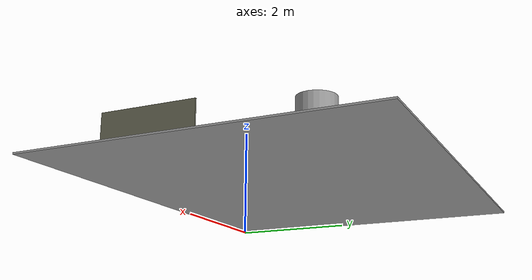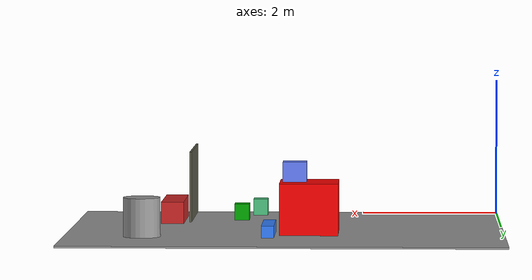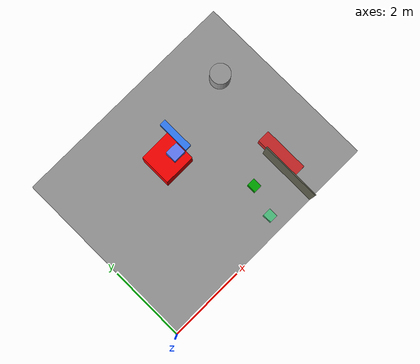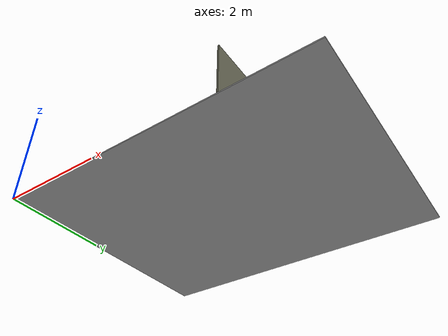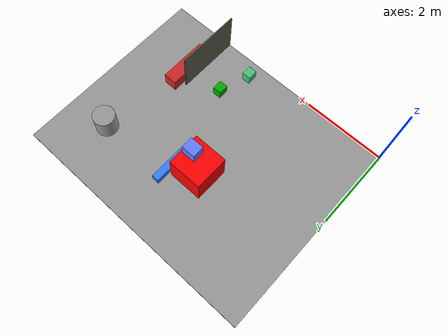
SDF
<?xml version='1.0'?>
<sdf version='1.7'>
  <model name='lab_walless_blue'>
    <link name='link_1'>
      <inertial>
        <mass>0.758123</mass>
        <inertia>
          <ixx>1.52606</ixx>
          <ixy>0</ixy>
          <ixz>0</ixz>
          <iyy>2.40105</iyy>
          <iyz>0</iyz>
          <izz>3.92704</izz>
        </inertia>
        <pose>0 0 0 0 -0 0</pose>
      </inertial>
      <pose>3.0758 2.46292 0 -3.14159 0 0</pose>
      <gravity>1</gravity>
      <self_collide>0</self_collide>
      <kinematic>0</kinematic>
      <enable_wind>0</enable_wind>
      <visual name='visual'>
        <pose>0 0 0 0 -0 0</pose>
        <geometry>
          <box>
            <size>6.16479 4.91475 0.024663</size>
          </box>
        </geometry>
        <material>
          <lighting>1</lighting>
          <script>
            <uri>file://media/materials/scripts/gazebo.material</uri>
            <name>Gazebo/Grey</name>
          </script>
          <shader type='pixel'>
            <normal_map>__default__</normal_map>
          </shader>
          <emissive>0 0 0 1</emissive>
          <ambient>0.3 0.3 0.3 1</ambient>
          <diffuse>0.7 0.7 0.7 1</diffuse>
          <specular>0.01 0.01 0.01 1</specular>
        </material>
        <transparency>0</transparency>
        <cast_shadows>1</cast_shadows>
      </visual>
      <collision name='collision'>
        <laser_retro>0</laser_retro>
        <max_contacts>10</max_contacts>
        <pose>0 0 0 0 -0 0</pose>
        <geometry>
          <box>
            <size>6.16479 4.91475 0.024663</size>
          </box>
        </geometry>
        <surface>
          <friction>
            <ode>
              <mu>1</mu>
              <mu2>1</mu2>
              <fdir1>0 0 0</fdir1>
              <slip1>0</slip1>
              <slip2>0</slip2>
            </ode>
            <torsional>
              <coefficient>1</coefficient>
              <patch_radius>0</patch_radius>
              <surface_radius>0</surface_radius>
              <use_patch_radius>1</use_patch_radius>
              <ode>
                <slip>0</slip>
              </ode>
            </torsional>
          </friction>
          <bounce>
            <restitution_coefficient>0</restitution_coefficient>
            <threshold>1e+06</threshold>
          </bounce>
          <contact>
            <collide_without_contact>0</collide_without_contact>
            <collide_without_contact_bitmask>1</collide_without_contact_bitmask>
            <collide_bitmask>1</collide_bitmask>
            <ode>
              <soft_cfm>0</soft_cfm>
              <soft_erp>0.2</soft_erp>
              <kp>1e+13</kp>
              <kd>1</kd>
              <max_vel>0.01</max_vel>
              <min_depth>0</min_depth>
            </ode>
            <bullet>
              <split_impulse>1</split_impulse>
              <split_impulse_penetration_threshold>-0.01</split_impulse_penetration_threshold>
              <soft_cfm>0</soft_cfm>
              <soft_erp>0.2</soft_erp>
              <kp>1e+13</kp>
              <kd>1</kd>
            </bullet>
          </contact>
        </surface>
      </collision>
    </link>
    <link name='link_1_clone_clone'>
      <inertial>
        <mass>0.0463262</mass>
        <inertia>
          <ixx>0.00964904</ixx>
          <ixy>0</ixy>
          <ixz>0</ixz>
          <iyy>0.0040622</iyy>
          <iyz>0</iyz>
          <izz>0.0137051</izz>
        </inertia>
        <pose>0 0 0 0 -0 0</pose>
      </inertial>
      <pose>4.50356 0.791954 0.525149 3.14159 1.57079 3.14159</pose>
      <gravity>1</gravity>
      <self_collide>0</self_collide>
      <kinematic>0</kinematic>
      <enable_wind>0</enable_wind>
      <visual name='visual'>
        <pose>0 0 0 0 -0 0</pose>
        <geometry>
          <box>
            <size>1.0254 1.58071 0.02808</size>
          </box>
        </geometry>
        <material>
          <lighting>1</lighting>
          <script>
            <uri>file://media/materials/scripts/gazebo.material</uri>
            <name>Gazebo/Grey</name>
          </script>
          <shader type='pixel'>
            <normal_map>__default__</normal_map>
          </shader>
          <emissive>0 0 0 1</emissive>
          <diffuse>0.367 0.367 0.3 0</diffuse>
          <ambient>0.367 0.367 0.3 1</ambient>
          <specular>0.01 0.01 0.01 1</specular>
        </material>
        <transparency>0</transparency>
        <cast_shadows>1</cast_shadows>
      </visual>
      <collision name='collision'>
        <laser_retro>0</laser_retro>
        <max_contacts>10</max_contacts>
        <pose>0 0 0 0 -0 0</pose>
        <geometry>
          <box>
            <size>1.0254 1.58071 0.02808</size>
          </box>
        </geometry>
        <surface>
          <friction>
            <ode>
              <mu>1</mu>
              <mu2>1</mu2>
              <fdir1>0 0 0</fdir1>
              <slip1>0</slip1>
              <slip2>0</slip2>
            </ode>
            <torsional>
              <coefficient>1</coefficient>
              <patch_radius>0</patch_radius>
              <surface_radius>0</surface_radius>
              <use_patch_radius>1</use_patch_radius>
              <ode>
                <slip>0</slip>
              </ode>
            </torsional>
          </friction>
          <bounce>
            <restitution_coefficient>0</restitution_coefficient>
            <threshold>1e+06</threshold>
          </bounce>
          <contact>
            <collide_without_contact>0</collide_without_contact>
            <collide_without_contact_bitmask>1</collide_without_contact_bitmask>
            <collide_bitmask>1</collide_bitmask>
            <ode>
              <soft_cfm>0</soft_cfm>
              <soft_erp>0.2</soft_erp>
              <kp>1e+13</kp>
              <kd>1</kd>
              <max_vel>0.01</max_vel>
              <min_depth>0</min_depth>
            </ode>
            <bullet>
              <split_impulse>1</split_impulse>
              <split_impulse_penetration_threshold>-0.01</split_impulse_penetration_threshold>
              <soft_cfm>0</soft_cfm>
              <soft_erp>0.2</soft_erp>
              <kp>1e+13</kp>
              <kd>1</kd>
            </bullet>
          </contact>
        </surface>
      </collision>
    </link>
    <link name='link_2'>
      <inertial>
        <mass>0.493483</mass>
        <inertia>
          <ixx>0.0496685</ixx>
          <ixy>0</ixy>
          <ixz>0</ixz>
          <iyy>0.0495799</iyy>
          <iyz>0</iyz>
          <izz>0.0559101</izz>
        </inertia>
        <pose>0 0 0 0 -0 0</pose>
      </inertial>
      <pose>2.73824 3.05073 0.374721 0 -0 0</pose>
      <self_collide>0</self_collide>
      <enable_wind>0</enable_wind>
      <kinematic>0</kinematic>
      <gravity>1</gravity>
      <visual name='visual'>
        <pose>0 0 0 0 -0 0</pose>
        <geometry>
          <box>
            <size>0.823835 0.825142 0.725898</size>
          </box>
        </geometry>
        <material>
          <lighting>1</lighting>
          <script>
            <uri>file://media/materials/scripts/gazebo.material</uri>
            <name>Gazebo/Grey</name>
          </script>
          <shader type='pixel'>
            <normal_map>__default__</normal_map>
          </shader>
          <emissive>0 0 0 1</emissive>
          <ambient>1 0.004 0 0</ambient>
          <diffuse>1 0.004 0 1</diffuse>
          <specular>0.01 0.01 0.01 1</specular>
        </material>
        <transparency>0</transparency>
        <cast_shadows>1</cast_shadows>
      </visual>
      <collision name='collision'>
        <laser_retro>0</laser_retro>
        <max_contacts>10</max_contacts>
        <pose>0 0 0 0 -0 0</pose>
        <geometry>
          <box>
            <size>0.823835 0.825142 0.725898</size>
          </box>
        </geometry>
        <surface>
          <friction>
            <ode>
              <mu>1</mu>
              <mu2>1</mu2>
              <fdir1>0 0 0</fdir1>
              <slip1>0</slip1>
              <slip2>0</slip2>
            </ode>
            <torsional>
              <coefficient>1</coefficient>
              <patch_radius>0</patch_radius>
              <surface_radius>0</surface_radius>
              <use_patch_radius>1</use_patch_radius>
              <ode>
                <slip>0</slip>
              </ode>
            </torsional>
          </friction>
          <bounce>
            <restitution_coefficient>0</restitution_coefficient>
            <threshold>1e+06</threshold>
          </bounce>
          <contact>
            <collide_without_contact>0</collide_without_contact>
            <collide_without_contact_bitmask>1</collide_without_contact_bitmask>
            <collide_bitmask>1</collide_bitmask>
            <ode>
              <soft_cfm>0</soft_cfm>
              <soft_erp>0.2</soft_erp>
              <kp>1e+13</kp>
              <kd>1</kd>
              <max_vel>0.01</max_vel>
              <min_depth>0</min_depth>
            </ode>
            <bullet>
              <split_impulse>1</split_impulse>
              <split_impulse_penetration_threshold>-0.01</split_impulse_penetration_threshold>
              <soft_cfm>0</soft_cfm>
              <soft_erp>0.2</soft_erp>
              <kp>1e+13</kp>
              <kd>1</kd>
            </bullet>
          </contact>
        </surface>
      </collision>
    </link>
    <link name='link_3'>
      <inertial>
        <mass>0.0269051</mass>
        <inertia>
          <ixx>0.00036272</ixx>
          <ixy>0</ixy>
          <ixz>0</ixz>
          <iyy>0.00042518</iyy>
          <iyz>0</iyz>
          <izz>0.00043442</izz>
        </inertia>
        <pose>0 0 0 0 -0 0</pose>
      </inertial>
      <pose>2.94253 2.97537 0.877969 0 -0 0</pose>
      <self_collide>0</self_collide>
      <enable_wind>0</enable_wind>
      <kinematic>0</kinematic>
      <gravity>1</gravity>
      <visual name='visual'>
        <pose>0 0 0 0 -0 0</pose>
        <geometry>
          <box>
            <size>0.332877 0.288011 0.280764</size>
          </box>
        </geometry>
        <material>
          <lighting>1</lighting>
          <script>
            <uri>file://media/materials/scripts/gazebo.material</uri>
            <name>Gazebo/Grey</name>
          </script>
          <shader type='pixel'>
            <normal_map>__default__</normal_map>
          </shader>
          <emissive>0 0 0 1</emissive>
          <ambient>0.4 0.5 1 1</ambient>
          <diffuse>0.4 0.5 1 1</diffuse>
          <specular>0.01 0.01 0.01 1</specular>
        </material>
        <transparency>0</transparency>
        <cast_shadows>1</cast_shadows>
      </visual>
      <collision name='collision'>
        <laser_retro>0</laser_retro>
        <max_contacts>10</max_contacts>
        <pose>0 0 0 0 -0 0</pose>
        <geometry>
          <box>
            <size>0.332877 0.288011 0.280764</size>
          </box>
        </geometry>
        <surface>
          <friction>
            <ode>
              <mu>1</mu>
              <mu2>1</mu2>
              <fdir1>0 0 0</fdir1>
              <slip1>0</slip1>
              <slip2>0</slip2>
            </ode>
            <torsional>
              <coefficient>1</coefficient>
              <patch_radius>0</patch_radius>
              <surface_radius>0</surface_radius>
              <use_patch_radius>1</use_patch_radius>
              <ode>
                <slip>0</slip>
              </ode>
            </torsional>
          </friction>
          <bounce>
            <restitution_coefficient>0</restitution_coefficient>
            <threshold>1e+06</threshold>
          </bounce>
          <contact>
            <collide_without_contact>0</collide_without_contact>
            <collide_without_contact_bitmask>1</collide_without_contact_bitmask>
            <collide_bitmask>1</collide_bitmask>
            <ode>
              <soft_cfm>0</soft_cfm>
              <soft_erp>0.2</soft_erp>
              <kp>1e+13</kp>
              <kd>1</kd>
              <max_vel>0.01</max_vel>
              <min_depth>0</min_depth>
            </ode>
            <bullet>
              <split_impulse>1</split_impulse>
              <split_impulse_penetration_threshold>-0.01</split_impulse_penetration_threshold>
              <soft_cfm>0</soft_cfm>
              <soft_erp>0.2</soft_erp>
              <kp>1e+13</kp>
              <kd>1</kd>
            </bullet>
          </contact>
        </surface>
      </collision>
    </link>
    <link name='link_3_clone'>
      <inertial>
        <mass>0.0264168</mass>
        <inertia>
          <ixx>0.00176742</ixx>
          <ixy>0</ixy>
          <ixz>0</ixz>
          <iyy>0.00013229</iyy>
          <iyz>0</iyz>
          <izz>0.00176866</izz>
        </inertia>
        <pose>0 0 0 0 -0 0</pose>
      </inertial>
      <pose>3.30079 3.36936 0.097235 0 -0 0</pose>
      <self_collide>0</self_collide>
      <enable_wind>0</enable_wind>
      <kinematic>0</kinematic>
      <gravity>1</gravity>
      <visual name='visual'>
        <pose>0 0 0 0 -0 0</pose>
        <geometry>
          <box>
            <size>0.174148 0.879259 0.172524</size>
          </box>
        </geometry>
        <material>
          <lighting>1</lighting>
          <script>
            <uri>file://media/materials/scripts/gazebo.material</uri>
            <name>Gazebo/Grey</name>
          </script>
          <shader type='pixel'>
            <normal_map>__default__</normal_map>
          </shader>
          <emissive>0 0 0 1</emissive>
          <ambient>0.2 0.5 1 1</ambient>
          <diffuse>0.2 0.5 1 1</diffuse>
          <specular>0.01 0.01 0.01 1</specular>
        </material>
        <transparency>0</transparency>
        <cast_shadows>1</cast_shadows>
      </visual>
      <collision name='collision'>
        <laser_retro>0</laser_retro>
        <max_contacts>10</max_contacts>
        <pose>0 0 0 0 -0 0</pose>
        <geometry>
          <box>
            <size>0.174148 0.879259 0.172524</size>
          </box>
        </geometry>
        <surface>
          <friction>
            <ode>
              <mu>1</mu>
              <mu2>1</mu2>
              <fdir1>0 0 0</fdir1>
              <slip1>0</slip1>
              <slip2>0</slip2>
            </ode>
            <torsional>
              <coefficient>1</coefficient>
              <patch_radius>0</patch_radius>
              <surface_radius>0</surface_radius>
              <use_patch_radius>1</use_patch_radius>
              <ode>
                <slip>0</slip>
              </ode>
            </torsional>
          </friction>
          <bounce>
            <restitution_coefficient>0</restitution_coefficient>
            <threshold>1e+06</threshold>
          </bounce>
          <contact>
            <collide_without_contact>0</collide_without_contact>
            <collide_without_contact_bitmask>1</collide_without_contact_bitmask>
            <collide_bitmask>1</collide_bitmask>
            <ode>
              <soft_cfm>0</soft_cfm>
              <soft_erp>0.2</soft_erp>
              <kp>1e+13</kp>
              <kd>1</kd>
              <max_vel>0.01</max_vel>
              <min_depth>0</min_depth>
            </ode>
            <bullet>
              <split_impulse>1</split_impulse>
              <split_impulse_penetration_threshold>-0.01</split_impulse_penetration_threshold>
              <soft_cfm>0</soft_cfm>
              <soft_erp>0.2</soft_erp>
              <kp>1e+13</kp>
              <kd>1</kd>
            </bullet>
          </contact>
        </surface>
      </collision>
    </link>
    <link name='link_4'>
      <inertial>
        <mass>0.148275</mass>
        <inertia>
          <ixx>0.00622155</ixx>
          <ixy>0</ixy>
          <ixz>0</ixz>
          <iyy>0.00622155</iyy>
          <iyz>0</iyz>
          <izz>0.0050115</izz>
        </inertia>
        <pose>0 0 0 0 -0 0</pose>
      </inertial>
      <pose>5.06181 3.61039 0.286661 0 -0 0</pose>
      <self_collide>0</self_collide>
      <enable_wind>0</enable_wind>
      <kinematic>0</kinematic>
      <gravity>1</gravity>
      <visual name='visual'>
        <pose>0 0 0 0 -0 0</pose>
        <geometry>
          <cylinder>
            <radius>0.259995</radius>
            <length>0.548382</length>
          </cylinder>
        </geometry>
        <material>
          <lighting>1</lighting>
          <script>
            <uri>file://media/materials/scripts/gazebo.material</uri>
            <name>Gazebo/Grey</name>
          </script>
          <shader type='pixel'>
            <normal_map>__default__</normal_map>
          </shader>
          <emissive>0 0 0 1</emissive>
          <ambient>1 1 1 0</ambient>
          <diffuse>1 1 1 1</diffuse>
          <specular>0.01 0.01 0.01 1</specular>
        </material>
        <transparency>0</transparency>
        <cast_shadows>1</cast_shadows>
      </visual>
      <collision name='collision'>
        <laser_retro>0</laser_retro>
        <max_contacts>10</max_contacts>
        <pose>0 0 0 0 -0 0</pose>
        <geometry>
          <cylinder>
            <radius>0.259995</radius>
            <length>0.548382</length>
          </cylinder>
        </geometry>
        <surface>
          <friction>
            <ode>
              <mu>1</mu>
              <mu2>1</mu2>
              <fdir1>0 0 0</fdir1>
              <slip1>0</slip1>
              <slip2>0</slip2>
            </ode>
            <torsional>
              <coefficient>1</coefficient>
              <patch_radius>0</patch_radius>
              <surface_radius>0</surface_radius>
              <use_patch_radius>1</use_patch_radius>
              <ode>
                <slip>0</slip>
              </ode>
            </torsional>
          </friction>
          <bounce>
            <restitution_coefficient>0</restitution_coefficient>
            <threshold>1e+06</threshold>
          </bounce>
          <contact>
            <collide_without_contact>0</collide_without_contact>
            <collide_without_contact_bitmask>1</collide_without_contact_bitmask>
            <collide_bitmask>1</collide_bitmask>
            <ode>
              <soft_cfm>0</soft_cfm>
              <soft_erp>0.2</soft_erp>
              <kp>1e+13</kp>
              <kd>1</kd>
              <max_vel>0.01</max_vel>
              <min_depth>0</min_depth>
            </ode>
            <bullet>
              <split_impulse>1</split_impulse>
              <split_impulse_penetration_threshold>-0.01</split_impulse_penetration_threshold>
              <soft_cfm>0</soft_cfm>
              <soft_erp>0.2</soft_erp>
              <kp>1e+13</kp>
              <kd>1</kd>
            </bullet>
          </contact>
        </surface>
      </collision>
    </link>
    <link name='link_5'>
      <inertial>
        <mass>0.123138</mass>
        <inertia>
          <ixx>0.0157175</ixx>
          <ixy>0</ixy>
          <ixz>0</ixz>
          <iyy>0.00211369</iyy>
          <iyz>0</iyz>
          <izz>0.0157573</izz>
        </inertia>
        <pose>0 0 0 0 -0 0</pose>
      </inertial>
      <pose>4.753 1.25194 0.170259 0 -0 0</pose>
      <self_collide>0</self_collide>
      <enable_wind>0</enable_wind>
      <kinematic>0</kinematic>
      <gravity>1</gravity>
      <visual name='visual'>
        <pose>0 0 0 0 -0 0</pose>
        <geometry>
          <box>
            <size>0.323928 1.1961 0.317889</size>
          </box>
        </geometry>
        <material>
          <lighting>1</lighting>
          <script>
            <uri>file://media/materials/scripts/gazebo.material</uri>
            <name>Gazebo/Red</name>
          </script>
          <shader type='pixel'>
            <normal_map>__default__</normal_map>
          </shader>
          <emissive>0 0 0 1</emissive>
          <ambient>0.2 0.5 1 1</ambient>
          <diffuse>0.2 0.5 1 1</diffuse>
          <specular>0.01 0.01 0.01 1</specular>
        </material>
        <transparency>0</transparency>
        <cast_shadows>1</cast_shadows>
      </visual>
      <collision name='collision'>
        <laser_retro>0</laser_retro>
        <max_contacts>10</max_contacts>
        <pose>0 0 0 0 -0 0</pose>
        <geometry>
          <box>
            <size>0.323928 1.1961 0.317889</size>
          </box>
        </geometry>
        <surface>
          <friction>
            <ode>
              <mu>1</mu>
              <mu2>1</mu2>
              <fdir1>0 0 0</fdir1>
              <slip1>0</slip1>
              <slip2>0</slip2>
            </ode>
            <torsional>
              <coefficient>1</coefficient>
              <patch_radius>0</patch_radius>
              <surface_radius>0</surface_radius>
              <use_patch_radius>1</use_patch_radius>
              <ode>
                <slip>0</slip>
              </ode>
            </torsional>
          </friction>
          <bounce>
            <restitution_coefficient>0</restitution_coefficient>
            <threshold>1e+06</threshold>
          </bounce>
          <contact>
            <collide_without_contact>0</collide_without_contact>
            <collide_without_contact_bitmask>1</collide_without_contact_bitmask>
            <collide_bitmask>1</collide_bitmask>
            <ode>
              <soft_cfm>0</soft_cfm>
              <soft_erp>0.2</soft_erp>
              <kp>1e+13</kp>
              <kd>1</kd>
              <max_vel>0.01</max_vel>
              <min_depth>0</min_depth>
            </ode>
            <bullet>
              <split_impulse>1</split_impulse>
              <split_impulse_penetration_threshold>-0.01</split_impulse_penetration_threshold>
              <soft_cfm>0</soft_cfm>
              <soft_erp>0.2</soft_erp>
              <kp>1e+13</kp>
              <kd>1</kd>
            </bullet>
          </contact>
        </surface>
      </collision>
    </link>
    <link name='link_6'>
      <inertial>
        <mass>0.0122647</mass>
        <inertia>
          <ixx>0.00011764</ixx>
          <ixy>0</ixy>
          <ixz>0</ixz>
          <iyy>0.00010442</iyy>
          <iyz>0</iyz>
          <izz>0.00010648</izz>
        </inertia>
        <pose>0 0 0 0 -0 0</pose>
      </inertial>
      <pose>3.76938 1.17487 0.13075 0 -0 0</pose>
      <self_collide>0</self_collide>
      <enable_wind>0</enable_wind>
      <kinematic>0</kinematic>
      <gravity>1</gravity>
      <visual name='visual'>
        <pose>0 0 0 0 -0 0</pose>
        <geometry>
          <box>
            <size>0.213598 0.241991 0.237785</size>
          </box>
        </geometry>
        <material>
          <lighting>1</lighting>
          <script>
            <uri>file://media/materials/scripts/gazebo.material</uri>
            <name>Gazebo/Grey</name>
          </script>
          <shader type='pixel'>
            <normal_map>__default__</normal_map>
          </shader>
          <emissive>0 0 0 1</emissive>
          <ambient>0 0.667 0 0</ambient>
          <diffuse>0 0.667 0 1</diffuse>
          <specular>0.01 0.01 0.01 1</specular>
        </material>
        <transparency>0</transparency>
        <cast_shadows>1</cast_shadows>
      </visual>
      <collision name='collision'>
        <laser_retro>0</laser_retro>
        <max_contacts>10</max_contacts>
        <pose>0 0 0 0 -0 0</pose>
        <geometry>
          <box>
            <size>0.213598 0.241991 0.237785</size>
          </box>
        </geometry>
        <surface>
          <friction>
            <ode>
              <mu>1</mu>
              <mu2>1</mu2>
              <fdir1>0 0 0</fdir1>
              <slip1>0</slip1>
              <slip2>0</slip2>
            </ode>
            <torsional>
              <coefficient>1</coefficient>
              <patch_radius>0</patch_radius>
              <surface_radius>0</surface_radius>
              <use_patch_radius>1</use_patch_radius>
              <ode>
                <slip>0</slip>
              </ode>
            </torsional>
          </friction>
          <bounce>
            <restitution_coefficient>0</restitution_coefficient>
            <threshold>1e+06</threshold>
          </bounce>
          <contact>
            <collide_without_contact>0</collide_without_contact>
            <collide_without_contact_bitmask>1</collide_without_contact_bitmask>
            <collide_bitmask>1</collide_bitmask>
            <ode>
              <soft_cfm>0</soft_cfm>
              <soft_erp>0.2</soft_erp>
              <kp>1e+13</kp>
              <kd>1</kd>
              <max_vel>0.01</max_vel>
              <min_depth>0</min_depth>
            </ode>
            <bullet>
              <split_impulse>1</split_impulse>
              <split_impulse_penetration_threshold>-0.01</split_impulse_penetration_threshold>
              <soft_cfm>0</soft_cfm>
              <soft_erp>0.2</soft_erp>
              <kp>1e+13</kp>
              <kd>1</kd>
            </bullet>
          </contact>
        </surface>
      </collision>
    </link>
    <link name='link_6_clone'>
      <inertial>
        <mass>0.0122647</mass>
        <inertia>
          <ixx>0.00011764</ixx>
          <ixy>0</ixy>
          <ixz>0</ixz>
          <iyy>0.00010442</iyy>
          <iyz>0</iyz>
          <izz>0.00010648</izz>
        </inertia>
        <pose>0 0 0 0 -0 0</pose>
      </inertial>
      <pose>3.52606 0.408481 0.130799 0 -0 0</pose>
      <self_collide>0</self_collide>
      <enable_wind>0</enable_wind>
      <kinematic>0</kinematic>
      <gravity>1</gravity>
      <visual name='visual'>
        <pose>0 0 0 0 -0 0</pose>
        <geometry>
          <box>
            <size>0.213598 0.241991 0.237785</size>
          </box>
        </geometry>
        <material>
          <lighting>1</lighting>
          <script>
            <uri>file://media/materials/scripts/gazebo.material</uri>
            <name>Gazebo/Grey</name>
          </script>
          <shader type='pixel'>
            <normal_map>__default__</normal_map>
          </shader>
          <emissive>0 0 0 1</emissive>
          <ambient>0.4 0.767 0.498 0</ambient>
          <diffuse>0.3 0.767 0.498 1</diffuse>
          <specular>0.01 0.01 0.01 1</specular>
        </material>
        <transparency>0</transparency>
        <cast_shadows>1</cast_shadows>
      </visual>
      <collision name='collision'>
        <laser_retro>0</laser_retro>
        <max_contacts>10</max_contacts>
        <pose>0 0 0 0 -0 0</pose>
        <geometry>
          <box>
            <size>0.213598 0.241991 0.237785</size>
          </box>
        </geometry>
        <surface>
          <friction>
            <ode>
              <mu>1</mu>
              <mu2>1</mu2>
              <fdir1>0 0 0</fdir1>
              <slip1>0</slip1>
              <slip2>0</slip2>
            </ode>
            <torsional>
              <coefficient>1</coefficient>
              <patch_radius>0</patch_radius>
              <surface_radius>0</surface_radius>
              <use_patch_radius>1</use_patch_radius>
              <ode>
                <slip>0</slip>
              </ode>
            </torsional>
          </friction>
          <bounce>
            <restitution_coefficient>0</restitution_coefficient>
            <threshold>1e+06</threshold>
          </bounce>
          <contact>
            <collide_without_contact>0</collide_without_contact>
            <collide_without_contact_bitmask>1</collide_without_contact_bitmask>
            <collide_bitmask>1</collide_bitmask>
            <ode>
              <soft_cfm>0</soft_cfm>
              <soft_erp>0.2</soft_erp>
              <kp>1e+13</kp>
              <kd>1</kd>
              <max_vel>0.01</max_vel>
              <min_depth>0</min_depth>
            </ode>
            <bullet>
              <split_impulse>1</split_impulse>
              <split_impulse_penetration_threshold>-0.01</split_impulse_penetration_threshold>
              <soft_cfm>0</soft_cfm>
              <soft_erp>0.2</soft_erp>
              <kp>1e+13</kp>
              <kd>1</kd>
            </bullet>
          </contact>
        </surface>
      </collision>
    </link>
    <joint name='link_1_JOINT_10' type='fixed'>
      <parent>link_1</parent>
      <child>link_3</child>
      <pose>0 0 0 0 -0 0</pose>
      <physics>
        <ode>
          <limit>
            <cfm>0</cfm>
            <erp>0.2</erp>
          </limit>
          <suspension>
            <cfm>0</cfm>
            <erp>0.2</erp>
          </suspension>
        </ode>
      </physics>
    </joint>
    <joint name='link_1_JOINT_3' type='fixed'>
      <parent>link_1</parent>
      <child>link_2</child>
      <pose>0 0 0 0 -0 0</pose>
      <physics>
        <ode>
          <limit>
            <cfm>0</cfm>
            <erp>0.2</erp>
          </limit>
          <suspension>
            <cfm>0</cfm>
            <erp>0.2</erp>
          </suspension>
        </ode>
      </physics>
    </joint>
    <joint name='link_1_JOINT_4' type='fixed'>
      <parent>link_1</parent>
      <child>link_1_clone_clone</child>
      <pose>0 0 0 0 -0 0</pose>
      <physics>
        <ode>
          <limit>
            <cfm>0</cfm>
            <erp>0.2</erp>
          </limit>
          <suspension>
            <cfm>0</cfm>
            <erp>0.2</erp>
          </suspension>
        </ode>
      </physics>
    </joint>
    <joint name='link_1_JOINT_5' type='fixed'>
      <parent>link_1</parent>
      <child>link_3_clone</child>
      <pose>0 0 0 0 -0 0</pose>
      <physics>
        <ode>
          <limit>
            <cfm>0</cfm>
            <erp>0.2</erp>
          </limit>
          <suspension>
            <cfm>0</cfm>
            <erp>0.2</erp>
          </suspension>
        </ode>
      </physics>
    </joint>
    <joint name='link_1_JOINT_6' type='fixed'>
      <parent>link_1</parent>
      <child>link_4</child>
      <pose>0 0 0 0 -0 0</pose>
      <physics>
        <ode>
          <limit>
            <cfm>0</cfm>
            <erp>0.2</erp>
          </limit>
          <suspension>
            <cfm>0</cfm>
            <erp>0.2</erp>
          </suspension>
        </ode>
      </physics>
    </joint>
    <joint name='link_1_JOINT_7' type='fixed'>
      <parent>link_1</parent>
      <child>link_6</child>
      <pose>0 0 0 0 -0 0</pose>
      <physics>
        <ode>
          <limit>
            <cfm>0</cfm>
            <erp>0.2</erp>
          </limit>
          <suspension>
            <cfm>0</cfm>
            <erp>0.2</erp>
          </suspension>
        </ode>
      </physics>
    </joint>
    <joint name='link_1_JOINT_8' type='fixed'>
      <parent>link_1</parent>
      <child>link_6_clone</child>
      <pose>0 0 0 0 -0 0</pose>
      <physics>
        <ode>
          <limit>
            <cfm>0</cfm>
            <erp>0.2</erp>
          </limit>
          <suspension>
            <cfm>0</cfm>
            <erp>0.2</erp>
          </suspension>
        </ode>
      </physics>
    </joint>
    <joint name='link_1_JOINT_9' type='fixed'>
      <parent>link_1</parent>
      <child>link_5</child>
      <pose>0 0 0 0 -0 0</pose>
      <physics>
        <ode>
          <limit>
            <cfm>0</cfm>
            <erp>0.2</erp>
          </limit>
          <suspension>
            <cfm>0</cfm>
            <erp>0.2</erp>
          </suspension>
        </ode>
      </physics>
    </joint>
    <static>1</static>
    <allow_auto_disable>1</allow_auto_disable>
  </model>
</sdf>
